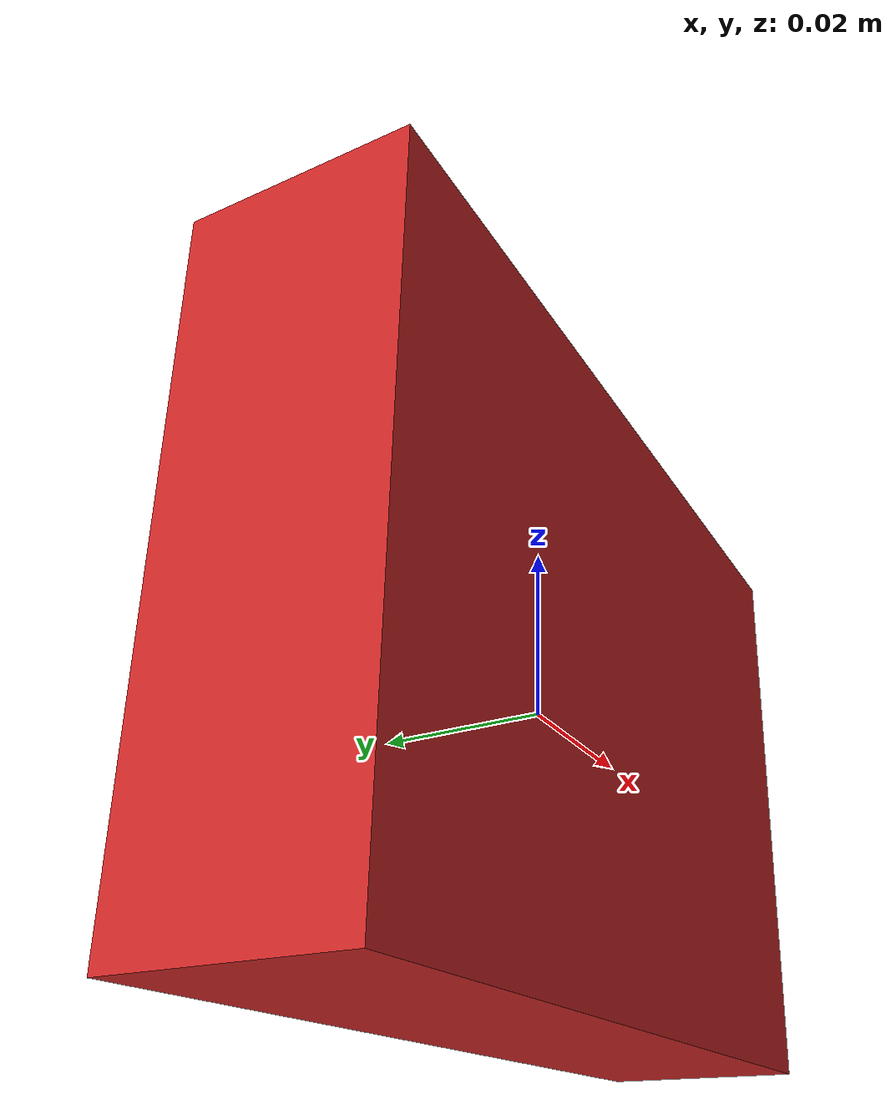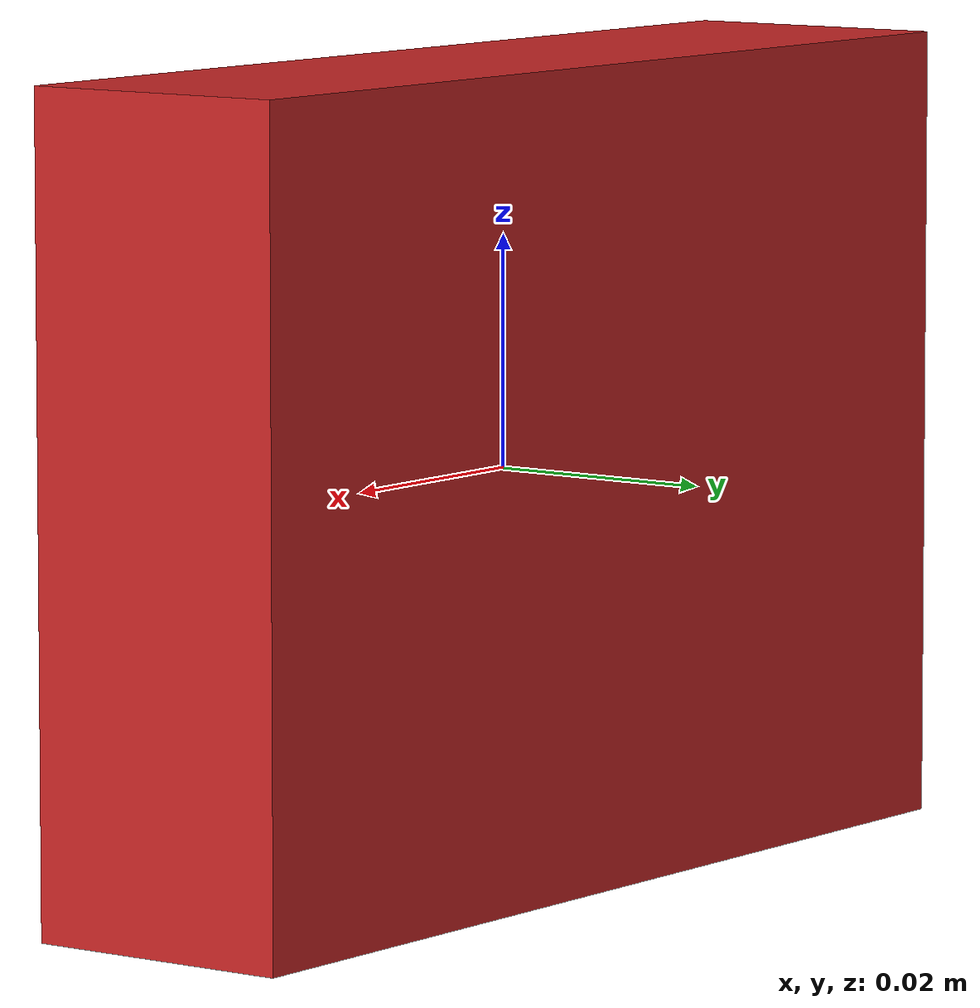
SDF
<?xml version='1.0'?>
<sdf version='1.7'>
  <model name='red_2_5_r'>
    <link name='link'>
      <inertial>
        <mass>0.1</mass>
        <inertia>
          <ixx>0.16667</ixx>
          <ixy>0</ixy>
          <ixz>0</ixz>
          <iyy>0.16667</iyy>
          <iyz>0</iyz>
          <izz>0.16667</izz>
        </inertia>
        <pose>0 0 0 0 -0 0</pose>
      </inertial>
      <self_collide>0</self_collide>
      <enable_wind>0</enable_wind>
      <kinematic>0</kinematic>
      <pose>0 0 0 0 -0 0</pose>
      <gravity>1</gravity>
      <visual name='visual'>
        <geometry>
          <box>
            <size>0.09433 0.024 0.07</size>
          </box>
        </geometry>
        <material>
          <script>
            <name>Gazebo/Red</name>
            <uri>file://media/materials/scripts/gazebo.material</uri>
          </script>
          <shader type='vertex'>
            <normal_map>__default__</normal_map>
          </shader>
        </material>
        <pose>0 0 0 0 -0 0</pose>
        <transparency>0</transparency>
        <cast_shadows>1</cast_shadows>
      </visual>
      <collision name='collision'>
        <laser_retro>0</laser_retro>
        <max_contacts>50</max_contacts>
        <pose>0 0 0 0 -0 0</pose>
        <geometry>
          <box>
            <size>0.09433 0.024 0.07</size>
          </box>
        </geometry>
        <surface>
          <friction>
            <ode>
              <mu>0.998</mu>
              <mu2>0.998</mu2>
              <fdir1>0 0 0</fdir1>
              <slip1>0</slip1>
              <slip2>0</slip2>
            </ode>
            <torsional>
              <coefficient>1</coefficient>
              <patch_radius>0</patch_radius>
              <surface_radius>0</surface_radius>
              <use_patch_radius>1</use_patch_radius>
              <ode>
                <slip>0</slip>
              </ode>
            </torsional>
          </friction>
          <bounce>
            <restitution_coefficient>0</restitution_coefficient>
            <threshold>100000</threshold>
          </bounce>
          <contact>
            <collide_without_contact>0</collide_without_contact>
            <collide_without_contact_bitmask>1</collide_without_contact_bitmask>
            <collide_bitmask>1</collide_bitmask>
            <ode>
              <soft_cfm>0</soft_cfm>
              <soft_erp>0.2</soft_erp>
              <kp>100000</kp>
              <kd>1</kd>
              <max_vel>100</max_vel>
              <min_depth>0.001</min_depth>
            </ode>
            <bullet>
              <split_impulse>1</split_impulse>
              <split_impulse_penetration_threshold>-0.01</split_impulse_penetration_threshold>
              <soft_cfm>0</soft_cfm>
              <soft_erp>0.2</soft_erp>
              <kp>100000</kp>
              <kd>1</kd>
            </bullet>
          </contact>
        </surface>
      </collision>
    </link>
    <static>0</static>
    <allow_auto_disable>0</allow_auto_disable>
  </model>
</sdf>
